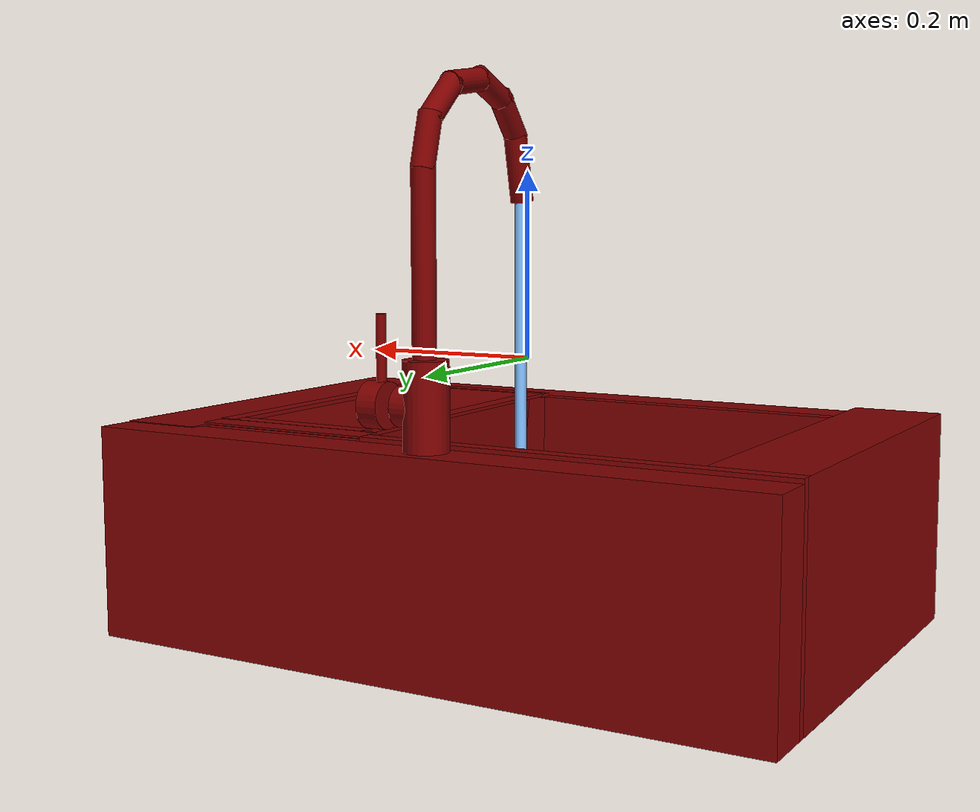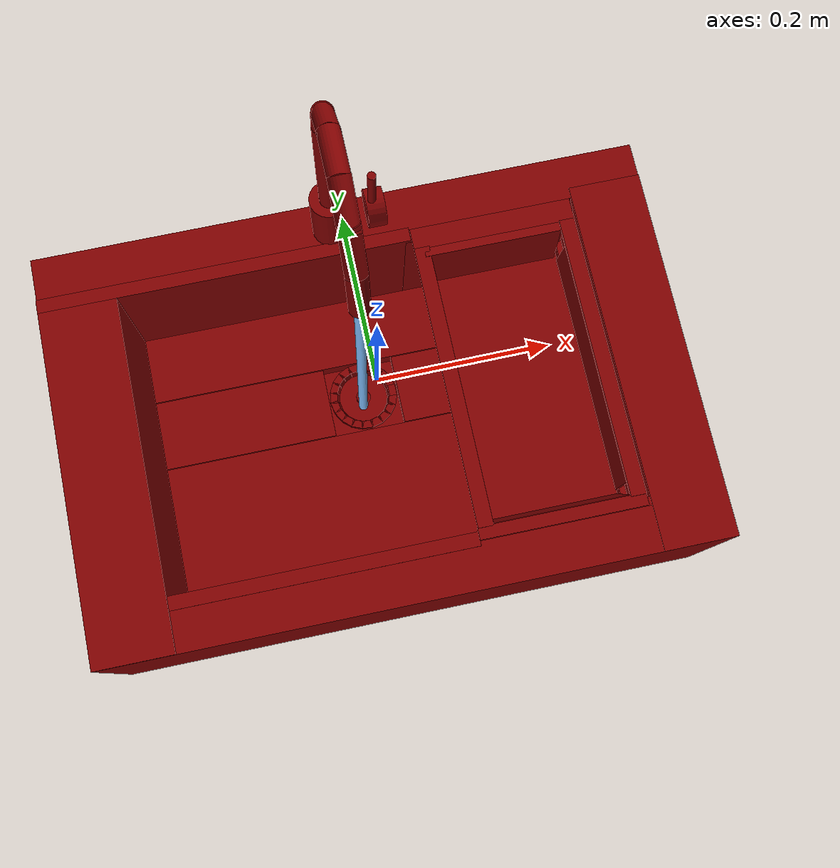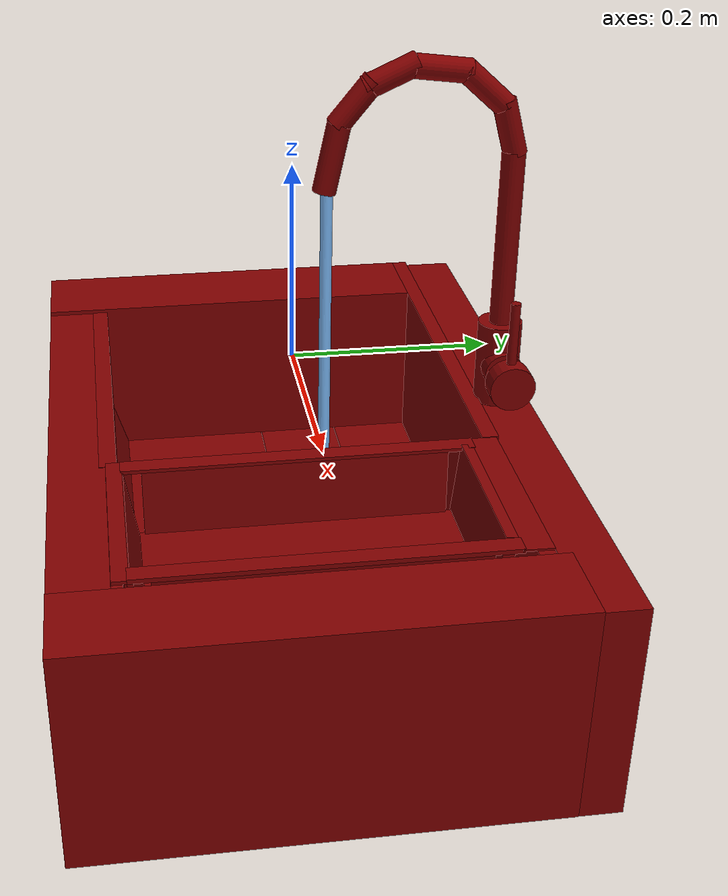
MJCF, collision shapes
<mujoco model="model">
  <compiler angle="radian"/>
  <asset>
    <mesh file="visuals/handle.obj" name="handle_vis"/>
    <mesh file="visuals/Body001.obj" name="Body001_vis"/>
    <mesh file="visuals/Container001.obj" name="Container001_vis"/>
    <mesh file="visuals/Funnel001.obj" name="Funnel001_vis"/>
    <mesh file="visuals/spout.obj" name="spout_vis"/>
    <texture file="visuals/T_BC001.png" name="Body001_material" type="2d"/>
    <material name="Body001_material" rgba="1 1 1 1.0" texture="Body001_material" shininess="0.5" specular="0.3103448502657381"/>
    <texture file="visuals/T_BC001.png" name="handle_material" type="2d"/>
    <material name="handle_material" rgba="1 1 1 1.0" texture="handle_material" shininess="0.5" specular="0.3103448502657381"/>
    <texture file="visuals/T_BC001.png" name="Container001_material" type="2d"/>
    <material name="Container001_material" rgba="1 1 1 1.0" texture="Container001_material" shininess="0.5" specular="0.3103448502657381"/>
    <texture file="visuals/T_BC001.png" name="Funnel001_material" type="2d"/>
    <material name="Funnel001_material" rgba="1 1 1 1.0" texture="Funnel001_material" shininess="0.5" specular="0.3103448502657381"/>
    <texture file="visuals/T_BC001.png" name="spout_material" type="2d"/>
    <material name="spout_material" rgba="1 1 1 1.0" texture="spout_material" shininess="0.5" specular="0.3103448502657381"/>
  </asset>
  <default>
    <default class="visual">
      <geom conaffinity="0" contype="0" group="1" type="mesh"/>
    </default>
    <default class="collision">
      <geom group="0" rgba="0.5 0 0 0.5"/>
    </default>
    <default class="spawn">
      <geom group="0" rgba="1 1 1 0.5" contype="0" conaffinity="0"/>
      <site group="0" rgba="1 1 1 0.5"/>
    </default>
    <default class="region">
      <geom group="1" conaffinity="0" contype="0" rgba="0 1 0 0"/>
    </default>
  </default>
  <worldbody>
    <body>
      <body name="object">
        <geom mesh="Body001_vis" type="mesh" solimp="0.998 0.998 0.001" solref="0.001 1" density="100" friction="0.95 0.3 0.1" class="visual" material="Body001_material"/>
        <geom class="collision" type="box" pos="-0.333354 -0.031688 -0.180779" size="0.048402853310108185 0.21965956687927246 0.11630520224571228" quat="1.0 0.0 0.0 0.0"/>
        <geom class="collision" type="box" pos="-0.002101 -0.223566 -0.183023" size="0.3796515166759491 0.02778611145913601 0.11406172066926956" quat="1.0 0.0 0.0 0.0"/>
        <geom class="collision" type="box" pos="0.333084 -0.020341 -0.182575" size="0.044843729585409164 0.2310067117214203 0.11450959742069244" quat="1.0 0.0 0.0 0.0"/>
        <geom class="collision" type="box" pos="-0.150434 0.190101 -0.180779" size="0.23131917417049408 0.008557619526982307 0.11630560457706451" quat="1.0 0.0 0.0 0.0"/>
        <geom class="collision" type="box" pos="-0.149940 -0.193216 -0.182703" size="0.2318132221698761 0.008557627908885479 0.11438243091106415" quat="1.0 0.0 0.0 0.0"/>
        <geom class="collision" type="box" pos="0.180447 0.191474 -0.183476" size="0.10596193373203278 0.009983021765947342 0.11361006647348404" quat="1.0 0.0 0.0 0.0"/>
        <geom class="collision" type="box" pos="0.186494 -0.194206 -0.183059" size="0.11200940608978271 0.008966151624917984 0.11402715742588043" quat="1.0 0.0 0.0 0.0"/>
        <geom class="collision" type="box" pos="-0.002101 -0.092587 -0.271514" size="0.3796532154083252 0.09105542302131653 0.025812510401010513" quat="1.0 0.0 0.0 0.0"/>
        <geom class="collision" type="box" pos="0.201839 0.045497 -0.271514" size="0.16317406296730042 0.045968107879161835 0.025812529027462006" quat="1.0 0.0 0.0 0.0"/>
        <geom class="collision" type="box" pos="-0.002101 0.138037 -0.271514" size="0.37965378165245056 0.045394547283649445 0.02581254579126835" quat="1.0 0.0 0.0 0.0"/>
        <geom class="collision" type="box" pos="-0.218582 0.045497 -0.271514" size="0.1631743311882019 0.045968178659677505 0.025812562555074692" quat="1.0 0.0 0.0 0.0"/>
        <geom class="collision" type="box" pos="-0.011339 0.045497 -0.281114" size="0.05725324526429176 0.04596821218729019 0.016212716698646545" quat="1.0 0.0 0.0 0.0"/>
        <geom class="collision" type="cylinder" pos="0.007943 0.218793 -0.026634" size="0.020228685811161995 0.009952086955308914" quat="0.7071068286895752 1.2101618374060763e-08 0.7071067690849304 -1.2101617485882343e-08"/>
        <geom class="collision" type="cylinder" pos="-0.012125 0.218973 -0.025929" size="0.022797370329499245 0.045382849872112274" quat="1.0 0.0 0.0 0.0"/>
        <geom class="collision" type="box" pos="-0.002101 0.224953 -0.183033" size="0.3796546459197998 0.027496295049786568 0.1140536293387413" quat="1.0 0.0 0.0 0.0"/>
        <geom class="collision" type="box" pos="0.002109 -0.185453 -0.222514" size="0.36479583382606506 0.008557695895433426 0.04323146864771843" quat="0.9885651469230652 0.1507944017648697 -3.3483089982231835e-17 -4.0703960531955856e-24"/>
        <geom class="collision" type="box" pos="0.274908 0.003790 -0.214719" size="0.20199944078922272 0.008557695895433426 0.04323146492242813" quat="0.69902104139328 0.10662775486707687 0.10662778466939926 0.6990212202072144"/>
        <body name="handle">
          <joint axis="1.0 0.0 0.0" pos="0.039323 0.218450 -0.027502" limited="true" name="handle_joint_hinge_0" type="hinge" range="-0.7853981633974483 0.7853981633974483" damping="1" frictionloss="1" armature=".01" stiffness="0.05"/>
          <joint axis="0.0 1.0 0.0" pos="0.039323 0.218450 -0.027502" limited="true" name="handle_joint_hinge_1" type="hinge" range="0.0 0.17453292519943295" damping="1" frictionloss="1" armature=".01" stiffness="0.05"/>
          <geom mesh="handle_vis" type="mesh" solimp="0.998 0.998 0.001" solref="0.001 1" density="100" friction="0.95 0.3 0.1" class="visual" material="handle_material"/>
          <geom class="collision" type="cylinder" pos="0.042794 0.218038 -0.027249" size="0.023489195853471756 0.01131028588861227" quat="0.7071068286895752 -0.0 0.7071067690849304 0.0"/>
          <geom class="collision" type="cylinder" pos="0.039326 0.218351 0.027744" size="0.005060066934674978 0.0339176282286644" quat="1.0 0.0 0.0 0.0"/>
        </body>
        <body name="Container001">
          <joint axis="0.0 0.0 1.0" pos="0.182692 0.001580 -0.104763" limited="true" name="Container001_joint" range="0.0 0.07" type="slide" damping="1" frictionloss="1" armature=".01" stiffness="0.05"/>
          <geom mesh="Container001_vis" type="mesh" solimp="0.998 0.998 0.001" solref="0.001 1" density="100" friction="0.95 0.3 0.1" class="visual" material="Container001_material"/>
          <geom class="collision" type="box" pos="0.179308 0.158480 -0.101587" size="0.08510932326316833 0.005809545051306486 0.03817487508058548" quat="0.04934852570295334 0.9987816214561462 -2.2177407054261217e-16 -7.894152648962042e-26"/>
          <geom class="collision" type="box" pos="0.096336 -0.008952 -0.103848" size="0.15226206183433533 0.002230982296168804 0.038181714713573456" quat="0.014585187658667564 0.7069562673568726 0.7069564461708069 0.014585212804377079"/>
          <geom class="collision" type="box" pos="0.271244 -0.008180 -0.104819" size="0.15285062789916992 0.0019349642097949982 0.038318976759910583" quat="0.027257831767201424 0.7065810561180115 -0.7065814137458801 -0.027257852256298065"/>
          <geom class="collision" type="box" pos="0.183102 0.181460 -0.065486" size="0.10112003237009048 0.01446457114070654 0.0009946709033101797" quat="0.9999801516532898 -0.006300824694335461 -1.3990645435459048e-18 -8.238416601640666e-25"/>
          <geom class="collision" type="box" pos="0.183875 -0.175125 -0.103245" size="0.08209159970283508 0.0028013784904032946 0.03832589462399483" quat="0.08811910450458527 -0.9961099624633789 -2.2203242882641453e-16 -1.723405163655244e-17"/>
          <geom class="collision" type="box" pos="0.182302 -0.006546 -0.141023" size="0.0856052041053772 0.1658957153558731 0.0034047712106257677" quat="1.0 0.0 0.0 0.0"/>
          <geom class="collision" type="box" pos="0.182659 -0.187693 -0.066308" size="0.10111471265554428 0.007741416804492474 0.0017976694507524371" quat="1.0 0.0 0.0 0.0"/>
          <geom class="collision" type="box" pos="0.091488 -0.005990 -0.065443" size="0.009462566114962101 0.17565251886844635 0.0017827090341597795" quat="1.0 0.0 0.0 0.0"/>
          <geom class="collision" type="box" pos="0.274470 -0.006174 -0.065823" size="0.009462566114962101 0.17565608024597168 0.002278571017086506" quat="1.0 0.0 0.0 0.0"/>
        </body>
        <body name="Funnel001">
          <joint axis="0.0 0.0 1.0" pos="-0.008347 0.046294 -0.255563" limited="true" name="Funnel001_joint" range="0.0 0.05" type="slide" damping="1" frictionloss="1" armature=".01" stiffness="0.05"/>
          <geom mesh="Funnel001_vis" type="mesh" solimp="0.998 0.998 0.001" solref="0.001 1" density="100" friction="0.95 0.3 0.1" class="visual" material="Funnel001_material"/>
          <geom class="collision" type="cylinder" pos="-0.008950 0.046398 -0.259882" size="0.035002294927835464 0.000941219215746969" quat="1.0 0.0 0.0 0.0"/>
          <geom class="collision" type="cylinder" pos="-0.008559 0.046398 -0.258228" size="0.00952162966132164 0.004481073003262281" quat="1.0 0.0 0.0 0.0"/>
          <geom class="collision" type="box" pos="0.026204 0.046398 -0.254372" size="0.001374227344058454 0.00741409370675683 0.00636748131364584" quat="0.9920489192008972 6.231488514656287e-16 0.1258530467748642 -4.307769252420712e-09"/>
          <geom class="collision" type="box" pos="0.031258 0.046424 -0.250575" size="0.004876116290688515 0.00741409370675683 0.002862062770873308" quat="1.0 0.0 0.0 0.0"/>
          <geom class="collision" type="box" pos="0.024346 0.035184 -0.254372" size="0.001374227344058454 0.00741409370675683 0.00636748131364584" quat="0.9787018895149231 0.020574934780597687 0.12415982037782669 -0.16218392550945282"/>
          <geom class="collision" type="box" pos="0.029138 0.033579 -0.250575" size="0.002857643412426114 0.00741409370675683 0.004873522557318211" quat="0.6972854137420654 0.11559797823429108 0.6979194283485413 -0.11549296975135803"/>
          <geom class="collision" type="box" pos="0.019077 0.025309 -0.254372" size="0.001374227344058454 0.00741409370675683 0.00636748131364584" quat="0.9398285746574402 0.04029399901628494 0.11922828108072281 -0.3176213204860687"/>
          <geom class="collision" type="box" pos="0.023110 0.022264 -0.250575" size="0.002857643412426114 0.00741409370675683 0.004873522557318211" quat="0.6696193814277649 0.2263815551996231 0.670228123664856 -0.22617599368095398"/>
          <geom class="collision" type="box" pos="0.010797 0.017522 -0.254372" size="0.001374227344058454 0.00741409370675683 0.006367481779307127" quat="0.8752581477165222 0.05924379825592041 0.11103677749633789 -0.46699488162994385"/>
          <geom class="collision" type="box" pos="0.013633 0.013339 -0.250575" size="0.002857643412426114 0.00741409370675683 0.004873522557318211" quat="0.6236485838890076 0.33288028836250305 0.6242155432701111 -0.33257800340652466"/>
          <geom class="collision" type="box" pos="0.000411 0.012811 -0.254372" size="0.001374227344058454 0.00741409370675683 0.006367481779307127" quat="0.7868015766143799 0.07665476948022842 0.09981502592563629 -0.6042386293411255"/>
          <geom class="collision" type="box" pos="0.001740 0.007936 -0.250575" size="0.002857643412426114 0.00741409370675683 0.004873522557318211" quat="0.5607638955116272 0.43061143159866333 0.5612735748291016 -0.43022045493125916"/>
          <geom class="collision" type="box" pos="-0.010902 0.011713 -0.254372" size="0.001374227344058454 0.007414093241095543 0.00636748131364584" quat="0.6774327754974365 0.09194158762693405 0.08594029396772385 -0.7247384786605835"/>
          <geom class="collision" type="box" pos="-0.011217 0.006669 -0.250575" size="0.002857643412426114 0.00741409370675683 0.004873523022979498" quat="0.482647567987442 0.5167996883392334 0.48308613896369934 -0.5163304805755615"/>
          <geom class="collision" type="box" pos="-0.021802 0.014255 -0.254372" size="0.001374227344058454 0.00741409370675683 0.00636748131364584" quat="0.5519278645515442 0.10457713156938553 0.070018470287323 -0.8243401646614075"/>
          <geom class="collision" type="box" pos="-0.023703 0.009573 -0.250575" size="0.002857643412426114 0.00741409370675683 0.004873522557318211" quat="0.3932937681674957 0.5877864956855774 0.3936512768268585 -0.587252676486969"/>
          <geom class="collision" type="box" pos="-0.031463 0.020245 -0.254372" size="0.001374227344058454 0.00741409370675683 0.00636748131364584" quat="0.4097360372543335 0.11461713165044785 0.051979824900627136 -0.9034807085990906"/>
          <geom class="collision" type="box" pos="-0.034772 0.016426 -0.250575" size="0.002857643412426114 0.0074140941724181175 0.004873522557318211" quat="0.29206138849258423 0.6442041397094727 0.29232680797576904 -0.6436195969581604"/>
          <geom class="collision" type="box" pos="-0.038734 0.029136 -0.254372" size="0.001374227344058454 0.00741409370675683 0.00636748131364584" quat="0.25485607981681824 0.12162920832633972 0.03233148530125618 -0.9587540626525879"/>
          <geom class="collision" type="box" pos="-0.043108 0.026604 -0.250575" size="0.002857643412426114 0.00741409370675683 0.004873522557318211" quat="0.18164247274398804 0.6836665868759155 0.18180756270885468 -0.6830461025238037"/>
          <geom class="collision" type="box" pos="-0.042690 0.039792 -0.254372" size="0.001374227344058454 0.00741409370675683 0.00636748131364584" quat="0.09468649327754974 0.12527848780155182 0.012012094259262085 -0.9875198602676392"/>
          <geom class="collision" type="box" pos="-0.047646 0.038806 -0.250575" size="0.002857643412426114 0.00741409370675683 0.004873522557318211" quat="0.0674813985824585 0.7041961550712585 0.06754276156425476 -0.7035567164421082"/>
          <geom class="collision" type="box" pos="-0.043020 0.050980 -0.254372" size="0.001374227344058454 0.00741409370675683 0.00636748131364584" quat="0.06552086770534515 -0.12557801604270935 0.00831207912415266 0.9898828864097595"/>
          <geom class="collision" type="box" pos="-0.048032 0.051620 -0.250575" size="0.002857643412426114 0.00741409370675683 0.004873523022979498" quat="0.046694185584783554 -0.7058823108673096 0.04673660174012184 0.7052414417266846"/>
          <geom class="collision" type="box" pos="-0.039700 0.061850 -0.254372" size="0.001374227344058454 0.00741409370675683 0.00636748131364584" quat="0.22646915912628174 -0.12252973765134811 0.02873024344444275 0.9658533930778503"/>
          <geom class="collision" type="box" pos="-0.044238 0.064073 -0.250575" size="0.002857643412426114 0.00741409370675683 0.004873522091656923" quat="0.16140791773796082 -0.688733696937561 0.1615545153617859 0.6881086230278015"/>
          <geom class="collision" type="box" pos="-0.033023 0.071096 -0.254372" size="0.001374227344058454 0.00741409370675683 0.006367481779307127" quat="0.3818311095237732 -0.11615757644176483 0.048439763486385345 0.9156233072280884"/>
          <geom class="collision" type="box" pos="-0.036598 0.074668 -0.250575" size="0.002857643412426114 0.00741409370675683 0.004873522557318211" quat="0.2721007466316223 -0.6529017686843872 0.27234795689582825 0.652309000492096"/>
          <geom class="collision" type="box" pos="-0.023748 0.077667 -0.254372" size="0.001374227344058454 0.00741409370675683 0.00636748131364584" quat="0.5263835191726685 -0.10667566955089569 0.06677792221307755 0.84088134765625"/>
          <geom class="collision" type="box" pos="-0.025980 0.082201 -0.250575" size="0.002857643412426114 0.00741409370675683 0.004873523022979498" quat="0.37510767579078674 -0.599577009677887 0.3754485249519348 0.5990326404571533"/>
          <geom class="collision" type="box" pos="-0.013025 0.080873 -0.254372" size="0.0013742272276431322 0.00741409370675683 0.00636748131364584" quat="0.6548842787742615 -0.09453434497117996 0.0830797404050827 0.7451762557029724"/>
          <geom class="collision" type="box" pos="-0.013700 0.085881 -0.250575" size="0.002857643412426114 0.00741409370675683 0.004873523022979498" quat="0.4665289521217346 -0.5314218997955322 0.4669528603553772 0.5309392809867859"/>
          <geom class="collision" type="box" pos="-0.001665 0.080471 -0.254372" size="0.001374227344058454 0.00741409370675683 0.006367481779307127" quat="0.7678977251052856 -0.07968029379844666 0.09741685539484024 0.6280876398086548"/>
          <geom class="collision" type="box" pos="-0.000689 0.085429 -0.250575" size="0.002857643412426114 0.00741409370675683 0.004873522557318211" quat="0.5471140742301941 -0.44785717129707336 0.5476112961769104 0.44745057821273804"/>
          <geom class="collision" type="box" pos="0.003252 0.079093 -0.254372" size="0.001374227344058454 0.00741409370675683 0.006367481779307127" quat="0.8119527697563171 -0.07231049984693527 0.10300575196743011 0.5699945092201233"/>
          <geom class="collision" type="box" pos="0.004944 0.083855 -0.250575" size="0.002857643412426114 0.00741409370675683 0.004873522557318211" quat="0.5785291194915771 -0.4063861072063446 0.5790548920631409 0.406017005443573"/>
          <geom class="collision" type="box" pos="0.013167 0.073536 -0.254372" size="0.001374227344058454 0.00741409370675683 0.00636748131364584" quat="0.8942136764526367 -0.054497845470905304 0.11344150453805923 0.4295845329761505"/>
          <geom class="collision" type="box" pos="0.016305 0.077497 -0.250575" size="0.002857643412426114 0.0074140941724181175 0.004873522557318211" quat="0.6371234655380249 -0.3062509000301361 0.6377027034759521 0.3059728443622589"/>
          <geom class="collision" type="box" pos="0.020664 0.065225 -0.254372" size="0.001374227344058454 0.00741409370675683 0.00636748131364584" quat="0.9517059326171875 -0.03552510216832161 0.1207350492477417 0.28003010153770447"/>
          <geom class="collision" type="box" pos="0.024898 0.067984 -0.250575" size="0.002857643412426114 0.00741409370675683 0.004873522557318211" quat="0.6780697107315063 -0.19959817826747894 0.6786862015724182 0.199416846036911"/>
          <geom class="collision" type="box" pos="0.025176 0.054792 -0.254372" size="0.001374227344058454 0.0074140941724181175 0.006367481779307127" quat="0.9846820831298828 -0.015308920294046402 0.12491849064826965 0.12067395448684692"/>
          <geom class="collision" type="box" pos="0.030073 0.056038 -0.250575" size="0.002857643412426114 0.00741409370675683 0.004873522557318211" quat="0.7015404105186462 -0.08602418005466461 0.7021781802177429 0.08594600856304169"/>
        </body>
        <body name="spout">
          <joint axis="0.0 0.0 1.0" pos="-0.011112 0.218559 0.156339" limited="true" name="spout_joint" range="-0.7853981633974483 0.7853981633974483" type="hinge" damping="1" frictionloss="1" armature=".01" stiffness="0.05"/>
          <site type="cylinder" rgba="0.5 0.75 1 1" size="0.006065879482775927 0.216606006026268" pos="-0.010771 0.034888 -0.039462" name="water"/>
          <geom mesh="spout_vis" type="mesh" solimp="0.998 0.998 0.001" solref="0.001 1" density="100" friction="0.95 0.3 0.1" class="visual" material="spout_material"/>
          <geom class="collision" type="cylinder" pos="-0.010931 0.219098 0.110776" size="0.011920161545276642 0.09080865979194641" quat="1.0 0.0 0.0 0.0"/>
          <geom class="collision" type="cylinder" pos="-0.010931 0.212943 0.225017" size="0.011920161545276642 0.02771236188709736" quat="0.9908534288406372 0.13494248688220978 5.597813108299096e-17 -5.141014360981385e-18"/>
          <geom class="collision" type="cylinder" pos="-0.010931 0.186979 0.264338" size="0.011920161545276642 0.02771236188709736" quat="0.9126067757606506 0.4088384807109833 8.829445634143715e-17 1.095444797781019e-18"/>
          <geom class="collision" type="cylinder" pos="-0.010931 0.144261 0.284288" size="0.011920161545276642 0.02771236188709736" quat="0.749485194683075 0.6620211005210876 1.4844748708999145e-16 -1.2915069722786706e-18"/>
          <geom class="collision" type="cylinder" pos="-0.010931 0.095434 0.279559" size="0.011920161545276642 0.027712363749742508" quat="0.5441926121711731 0.8389602899551392 1.7793484803606138e-16 1.1991887148726233e-17"/>
          <geom class="collision" type="cylinder" pos="-0.010931 0.061210 0.254190" size="0.011920161545276642 0.02771236188709736" quat="0.9412050843238831 -0.33783581852912903 6.469056639466089e-17 -4.214016970556522e-16"/>
          <geom class="collision" type="cylinder" pos="-0.010931 0.039299 0.202242" size="0.011920161545276642 0.03456389904022217" quat="0.9946037530899048 -0.10374680906534195 -2.303643577475876e-17 -1.6915156271088787e-23"/>
        </body>
        <geom class="region" name="reg_main" type="box" pos="0.0 0.0 -0.18045850000000002" size="0.375715 0.249434 0.1143345"/>
        <geom class="region" name="reg_basin" type="box" pos="-0.1029285 -0.003589999999999996 -0.154815" size="0.18422950000000002 0.178664 0.085285"/>
      </body>
    </body>
  </worldbody>
  <actuator>
    <motor name="handle_joint_hinge_0_actuator" joint="handle_joint_hinge_0" gear="10"/>
    <motor name="handle_joint_hinge_1_actuator" joint="handle_joint_hinge_1" gear="10"/>
    <motor name="Container001_joint_actuator" joint="Container001_joint" gear="50"/>
    <motor name="Funnel001_joint_actuator" joint="Funnel001_joint" gear="10"/>
    <motor name="spout_joint_actuator" joint="spout_joint" gear="10"/>
  </actuator>
</mujoco>
